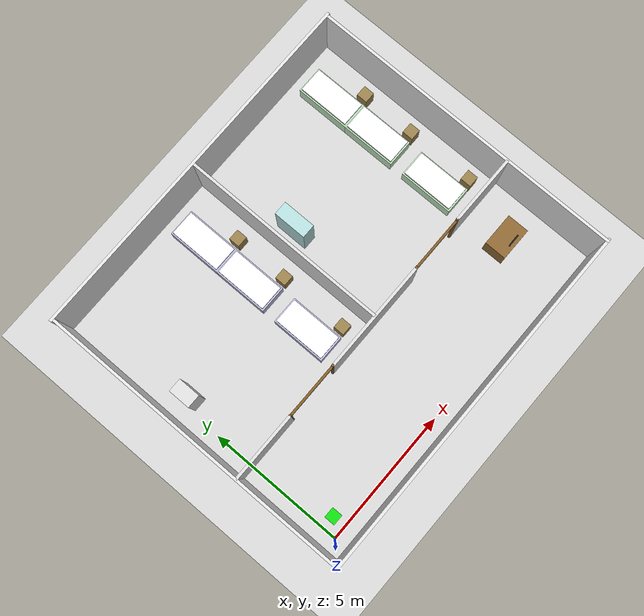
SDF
<?xml version="1.0"?>
<sdf version="1.6">
  <world name="hospital_room">

    <!-- ── Lighting ─────────────────────────────────────────────────── -->
    <light name="sun" type="directional">
      <cast_shadows>true</cast_shadows>
      <pose>0 0 10 0 0 0</pose>
      <diffuse>0.95 0.95 0.95 1</diffuse>
      <specular>0.3 0.3 0.3 1</specular>
      <direction>-0.5 0.1 -0.9</direction>
    </light>

    <light name="ambient_ward_a" type="point">
      <pose>2.5 7.0 2.4 0 0 0</pose>
      <diffuse>0.7 0.7 0.8 1</diffuse>
      <specular>0.1 0.1 0.1 1</specular>
      <attenuation><range>8</range><linear>0.1</linear></attenuation>
    </light>

    <light name="ambient_ward_b" type="point">
      <pose>9.5 7.0 2.4 0 0 0</pose>
      <diffuse>0.7 0.7 0.8 1</diffuse>
      <specular>0.1 0.1 0.1 1</specular>
      <attenuation><range>8</range><linear>0.1</linear></attenuation>
    </light>

    <scene>
      <ambient>0.5 0.5 0.55 1</ambient>
      <background>0.6 0.6 0.65 1</background>
      <shadows>true</shadows>
    </scene>

    <physics name="default_physics" type="ode">
      <max_step_size>0.001</max_step_size>
      <real_time_factor>1</real_time_factor>
    </physics>

    <!-- ── Ground plane ─────────────────────────────────────────────── -->
    <model name="ground_plane">
      <static>true</static>
      <link name="link">
        <collision name="collision">
          <geometry><plane><normal>0 0 1</normal><size>30 30</size></plane></geometry>
          <surface><friction><ode><mu>1.0</mu><mu2>1.0</mu2></ode></friction></surface>
        </collision>
        <visual name="visual">
          <geometry><plane><normal>0 0 1</normal><size>30 30</size></plane></geometry>
          <material><ambient>0.82 0.82 0.82 1</ambient><diffuse>0.82 0.82 0.82 1</diffuse></material>
        </visual>
      </link>
    </model>

    <model name="wall_south">
      <static>true</static><pose>6.0 -0.5 1.25 0 0 0</pose>
      <link name="link">
        <collision name="c"><geometry><box><size>13.2 0.1 2.5</size></box></geometry></collision>
        <visual name="v"><geometry><box><size>13.2 0.1 2.5</size></box></geometry>
          <material><ambient>0.88 0.88 0.88 1</ambient><diffuse>0.88 0.88 0.88 1</diffuse></material></visual>
      </link>
    </model>

    <model name="wall_north">
      <static>true</static><pose>6.0 11.0 1.25 0 0 0</pose>
      <link name="link">
        <collision name="c"><geometry><box><size>13.2 0.1 2.5</size></box></geometry></collision>
        <visual name="v"><geometry><box><size>13.2 0.1 2.5</size></box></geometry>
          <material><ambient>0.88 0.88 0.88 1</ambient><diffuse>0.88 0.88 0.88 1</diffuse></material></visual>
      </link>
    </model>

    <model name="wall_west">
      <static>true</static><pose>-0.5 5.25 1.25 0 0 0</pose>
      <link name="link">
        <collision name="c"><geometry><box><size>0.1 11.6 2.5</size></box></geometry></collision>
        <visual name="v"><geometry><box><size>0.1 11.6 2.5</size></box></geometry>
          <material><ambient>0.88 0.88 0.88 1</ambient><diffuse>0.88 0.88 0.88 1</diffuse></material></visual>
      </link>
    </model>

    <model name="wall_east">
      <static>true</static><pose>12.5 5.25 1.25 0 0 0</pose>
      <link name="link">
        <collision name="c"><geometry><box><size>0.1 11.6 2.5</size></box></geometry></collision>
        <visual name="v"><geometry><box><size>0.1 11.6 2.5</size></box></geometry>
          <material><ambient>0.88 0.88 0.88 1</ambient><diffuse>0.88 0.88 0.88 1</diffuse></material></visual>
      </link>
    </model>

    <!-- west segment: x -0.5 → 2.0 -->
    <model name="divider_west">
      <static>true</static><pose>0.75 3.5 1.25 0 0 0</pose>
      <link name="link">
        <collision name="c"><geometry><box><size>2.5 0.1 2.5</size></box></geometry></collision>
        <visual name="v"><geometry><box><size>2.5 0.1 2.5</size></box></geometry>
          <material><ambient>0.85 0.85 0.85 1</ambient><diffuse>0.85 0.85 0.85 1</diffuse></material></visual>
      </link>
    </model>

    <!-- middle segment: x 4.0 → 8.0 -->
    <model name="divider_mid">
      <static>true</static><pose>6.0 3.5 1.25 0 0 0</pose>
      <link name="link">
        <collision name="c"><geometry><box><size>4.0 0.1 2.5</size></box></geometry></collision>
        <visual name="v"><geometry><box><size>4.0 0.1 2.5</size></box></geometry>
          <material><ambient>0.85 0.85 0.85 1</ambient><diffuse>0.85 0.85 0.85 1</diffuse></material></visual>
      </link>
    </model>

    <!-- east segment: x 10.0 → 12.5 -->
    <model name="divider_east">
      <static>true</static><pose>11.25 3.5 1.25 0 0 0</pose>
      <link name="link">
        <collision name="c"><geometry><box><size>2.5 0.1 2.5</size></box></geometry></collision>
        <visual name="v"><geometry><box><size>2.5 0.1 2.5</size></box></geometry>
          <material><ambient>0.85 0.85 0.85 1</ambient><diffuse>0.85 0.85 0.85 1</diffuse></material></visual>
      </link>
    </model>

    <model name="wall_centre">
      <static>true</static><pose>6.0 7.25 1.25 0 0 0</pose>
      <link name="link">
        <collision name="c"><geometry><box><size>0.1 7.5 2.5</size></box></geometry></collision>
        <visual name="v"><geometry><box><size>0.1 7.5 2.5</size></box></geometry>
          <material><ambient>0.85 0.85 0.85 1</ambient><diffuse>0.85 0.85 0.85 1</diffuse></material></visual>
      </link>
    </model>

    <!-- ════════════════════════════════════════════════════════════════
         DOOR FRAMES (visual markers at openings)
    ════════════════════════════════════════════════════════════════════ -->

    <!-- Door A left post x=2.0 -->
    <model name="door_a_left"><static>true</static><pose>2.0 3.5 1.25 0 0 0</pose>
      <link name="link">
        <collision name="c"><geometry><box><size>0.08 0.08 2.5</size></box></geometry></collision>
        <visual name="v"><geometry><box><size>0.08 0.08 2.5</size></box></geometry>
          <material><ambient>0.5 0.35 0.15 1</ambient><diffuse>0.5 0.35 0.15 1</diffuse></material></visual>
      </link>
    </model>
    <!-- Door A right post x=4.0 -->
    <model name="door_a_right"><static>true</static><pose>4.0 3.5 1.25 0 0 0</pose>
      <link name="link">
        <collision name="c"><geometry><box><size>0.08 0.08 2.5</size></box></geometry></collision>
        <visual name="v"><geometry><box><size>0.08 0.08 2.5</size></box></geometry>
          <material><ambient>0.5 0.35 0.15 1</ambient><diffuse>0.5 0.35 0.15 1</diffuse></material></visual>
      </link>
    </model>
    <!-- Door A lintel -->
    <model name="door_a_top"><static>true</static><pose>3.0 3.5 2.3 0 0 0</pose>
      <link name="link">
        <collision name="c"><geometry><box><size>2.08 0.08 0.2</size></box></geometry></collision>
        <visual name="v"><geometry><box><size>2.08 0.08 0.2</size></box></geometry>
          <material><ambient>0.5 0.35 0.15 1</ambient><diffuse>0.5 0.35 0.15 1</diffuse></material></visual>
      </link>
    </model>

    <!-- Door B left post x=8.0 -->
    <model name="door_b_left"><static>true</static><pose>8.0 3.5 1.25 0 0 0</pose>
      <link name="link">
        <collision name="c"><geometry><box><size>0.08 0.08 2.5</size></box></geometry></collision>
        <visual name="v"><geometry><box><size>0.08 0.08 2.5</size></box></geometry>
          <material><ambient>0.5 0.35 0.15 1</ambient><diffuse>0.5 0.35 0.15 1</diffuse></material></visual>
      </link>
    </model>
    <!-- Door B right post x=10.0 -->
    <model name="door_b_right"><static>true</static><pose>10.0 3.5 1.25 0 0 0</pose>
      <link name="link">
        <collision name="c"><geometry><box><size>0.08 0.08 2.5</size></box></geometry></collision>
        <visual name="v"><geometry><box><size>0.08 0.08 2.5</size></box></geometry>
          <material><ambient>0.5 0.35 0.15 1</ambient><diffuse>0.5 0.35 0.15 1</diffuse></material></visual>
      </link>
    </model>
    <!-- Door B lintel -->
    <model name="door_b_top"><static>true</static><pose>9.0 3.5 2.3 0 0 0</pose>
      <link name="link">
        <collision name="c"><geometry><box><size>2.08 0.08 0.2</size></box></geometry></collision>
        <visual name="v"><geometry><box><size>2.08 0.08 0.2</size></box></geometry>
          <material><ambient>0.5 0.35 0.15 1</ambient><diffuse>0.5 0.35 0.15 1</diffuse></material></visual>
      </link>
    </model>

    <model name="bed_1_frame"><static>true</static><pose>4.5 5.0 0.3 0 0 0</pose>
      <link name="link">
        <collision name="c"><geometry><box><size>1.0 2.0 0.6</size></box></geometry></collision>
        <visual name="v"><geometry><box><size>1.0 2.0 0.6</size></box></geometry>
          <material><ambient>0.75 0.75 0.9 1</ambient><diffuse>0.75 0.75 0.9 1</diffuse></material></visual>
      </link>
    </model>
    <!-- Mattress on bed 1 -->
    <model name="bed_1_mattress"><static>true</static><pose>4.5 5.0 0.65 0 0 0</pose>
      <link name="link">
        <visual name="v"><geometry><box><size>0.9 1.9 0.1</size></box></geometry>
          <material><ambient>0.95 0.95 0.95 1</ambient><diffuse>0.95 0.95 0.95 1</diffuse></material></visual>
      </link>
    </model>
    <!-- Side table bed 1 -->
    <model name="table_1"><static>true</static><pose>5.3 4.2 0.35 0 0 0</pose>
      <link name="link">
        <collision name="c"><geometry><box><size>0.4 0.4 0.7</size></box></geometry></collision>
        <visual name="v"><geometry><box><size>0.4 0.4 0.7</size></box></geometry>
          <material><ambient>0.6 0.5 0.3 1</ambient><diffuse>0.6 0.5 0.3 1</diffuse></material></visual>
      </link>
    </model>

    <model name="bed_2_frame"><static>true</static><pose>4.5 7.5 0.3 0 0 0</pose>
      <link name="link">
        <collision name="c"><geometry><box><size>1.0 2.0 0.6</size></box></geometry></collision>
        <visual name="v"><geometry><box><size>1.0 2.0 0.6</size></box></geometry>
          <material><ambient>0.75 0.75 0.9 1</ambient><diffuse>0.75 0.75 0.9 1</diffuse></material></visual>
      </link>
    </model>
    <model name="bed_2_mattress"><static>true</static><pose>4.5 7.5 0.65 0 0 0</pose>
      <link name="link">
        <visual name="v"><geometry><box><size>0.9 1.9 0.1</size></box></geometry>
          <material><ambient>0.95 0.95 0.95 1</ambient><diffuse>0.95 0.95 0.95 1</diffuse></material></visual>
      </link>
    </model>
    <model name="table_2"><static>true</static><pose>5.3 6.7 0.35 0 0 0</pose>
      <link name="link">
        <collision name="c"><geometry><box><size>0.4 0.4 0.7</size></box></geometry></collision>
        <visual name="v"><geometry><box><size>0.4 0.4 0.7</size></box></geometry>
          <material><ambient>0.6 0.5 0.3 1</ambient><diffuse>0.6 0.5 0.3 1</diffuse></material></visual>
      </link>
    </model>

    <model name="bed_3_frame"><static>true</static><pose>4.5 9.5 0.3 0 0 0</pose>
      <link name="link">
        <collision name="c"><geometry><box><size>1.0 2.0 0.6</size></box></geometry></collision>
        <visual name="v"><geometry><box><size>1.0 2.0 0.6</size></box></geometry>
          <material><ambient>0.75 0.75 0.9 1</ambient><diffuse>0.75 0.75 0.9 1</diffuse></material></visual>
      </link>
    </model>
    <model name="bed_3_mattress"><static>true</static><pose>4.5 9.5 0.65 0 0 0</pose>
      <link name="link">
        <visual name="v"><geometry><box><size>0.9 1.9 0.1</size></box></geometry>
          <material><ambient>0.95 0.95 0.95 1</ambient><diffuse>0.95 0.95 0.95 1</diffuse></material></visual>
      </link>
    </model>
    <model name="table_3"><static>true</static><pose>5.3 8.7 0.35 0 0 0</pose>
      <link name="link">
        <collision name="c"><geometry><box><size>0.4 0.4 0.7</size></box></geometry></collision>
        <visual name="v"><geometry><box><size>0.4 0.4 0.7</size></box></geometry>
          <material><ambient>0.6 0.5 0.3 1</ambient><diffuse>0.6 0.5 0.3 1</diffuse></material></visual>
      </link>
    </model>

    <!-- ════════════════════════════════════════════════════════════════
         WARD B BEDS  (x≈11.0, robot aisle at x≈8.5)
    ════════════════════════════════════════════════════════════════════ -->

    <model name="bed_4_frame"><static>true</static><pose>11.0 5.0 0.3 0 0 0</pose>
      <link name="link">
        <collision name="c"><geometry><box><size>1.0 2.0 0.6</size></box></geometry></collision>
        <visual name="v"><geometry><box><size>1.0 2.0 0.6</size></box></geometry>
          <material><ambient>0.75 0.9 0.75 1</ambient><diffuse>0.75 0.9 0.75 1</diffuse></material></visual>
      </link>
    </model>
    <model name="bed_4_mattress"><static>true</static><pose>11.0 5.0 0.65 0 0 0</pose>
      <link name="link">
        <visual name="v"><geometry><box><size>0.9 1.9 0.1</size></box></geometry>
          <material><ambient>0.95 0.95 0.95 1</ambient><diffuse>0.95 0.95 0.95 1</diffuse></material></visual>
      </link>
    </model>
    <model name="table_4"><static>true</static><pose>11.8 4.2 0.35 0 0 0</pose>
      <link name="link">
        <collision name="c"><geometry><box><size>0.4 0.4 0.7</size></box></geometry></collision>
        <visual name="v"><geometry><box><size>0.4 0.4 0.7</size></box></geometry>
          <material><ambient>0.6 0.5 0.3 1</ambient><diffuse>0.6 0.5 0.3 1</diffuse></material></visual>
      </link>
    </model>

    <model name="bed_5_frame"><static>true</static><pose>11.0 7.5 0.3 0 0 0</pose>
      <link name="link">
        <collision name="c"><geometry><box><size>1.0 2.0 0.6</size></box></geometry></collision>
        <visual name="v"><geometry><box><size>1.0 2.0 0.6</size></box></geometry>
          <material><ambient>0.75 0.9 0.75 1</ambient><diffuse>0.75 0.9 0.75 1</diffuse></material></visual>
      </link>
    </model>
    <model name="bed_5_mattress"><static>true</static><pose>11.0 7.5 0.65 0 0 0</pose>
      <link name="link">
        <visual name="v"><geometry><box><size>0.9 1.9 0.1</size></box></geometry>
          <material><ambient>0.95 0.95 0.95 1</ambient><diffuse>0.95 0.95 0.95 1</diffuse></material></visual>
      </link>
    </model>
    <model name="table_5"><static>true</static><pose>11.8 6.7 0.35 0 0 0</pose>
      <link name="link">
        <collision name="c"><geometry><box><size>0.4 0.4 0.7</size></box></geometry></collision>
        <visual name="v"><geometry><box><size>0.4 0.4 0.7</size></box></geometry>
          <material><ambient>0.6 0.5 0.3 1</ambient><diffuse>0.6 0.5 0.3 1</diffuse></material></visual>
      </link>
    </model>

    <model name="bed_6_frame"><static>true</static><pose>11.0 9.5 0.3 0 0 0</pose>
      <link name="link">
        <collision name="c"><geometry><box><size>1.0 2.0 0.6</size></box></geometry></collision>
        <visual name="v"><geometry><box><size>1.0 2.0 0.6</size></box></geometry>
          <material><ambient>0.75 0.9 0.75 1</ambient><diffuse>0.75 0.9 0.75 1</diffuse></material></visual>
      </link>
    </model>
    <model name="bed_6_mattress"><static>true</static><pose>11.0 9.5 0.65 0 0 0</pose>
      <link name="link">
        <visual name="v"><geometry><box><size>0.9 1.9 0.1</size></box></geometry>
          <material><ambient>0.95 0.95 0.95 1</ambient><diffuse>0.95 0.95 0.95 1</diffuse></material></visual>
      </link>
    </model>
    <model name="table_6"><static>true</static><pose>11.8 8.7 0.35 0 0 0</pose>
      <link name="link">
        <collision name="c"><geometry><box><size>0.4 0.4 0.7</size></box></geometry></collision>
        <visual name="v"><geometry><box><size>0.4 0.4 0.7</size></box></geometry>
          <material><ambient>0.6 0.5 0.3 1</ambient><diffuse>0.6 0.5 0.3 1</diffuse></material></visual>
      </link>
    </model>

    <!-- ════════════════════════════════════════════════════════════════
         HALLWAY FURNITURE
    ════════════════════════════════════════════════════════════════════ -->

    <!-- Nurses station desk — near east end of hallway -->
    <model name="nurses_desk"><static>true</static><pose>11.0 2.0 0.45 0 0 0</pose>
      <link name="link">
        <collision name="c"><geometry><box><size>1.2 0.8 0.9</size></box></geometry></collision>
        <visual name="v"><geometry><box><size>1.2 0.8 0.9</size></box></geometry>
          <material><ambient>0.55 0.40 0.20 1</ambient><diffuse>0.55 0.40 0.20 1</diffuse></material></visual>
      </link>
    </model>

    <!-- Computer monitor on desk -->
    <model name="nurses_monitor"><static>true</static><pose>11.0 1.75 1.05 0 0 0</pose>
      <link name="link">
        <visual name="v"><geometry><box><size>0.4 0.05 0.3</size></box></geometry>
          <material><ambient>0.1 0.1 0.1 1</ambient><diffuse>0.1 0.1 0.1 1</diffuse></material></visual>
      </link>
    </model>

    <!-- Charging dock — bright green floor marker near home -->
    <model name="charging_dock"><static>true</static><pose>0.5 0.5 0.01 0 0 0</pose>
      <link name="link">
        <collision name="c"><geometry><box><size>0.4 0.4 0.02</size></box></geometry></collision>
        <visual name="v"><geometry><box><size>0.4 0.4 0.02</size></box></geometry>
          <material><ambient>0.05 0.85 0.05 1</ambient><diffuse>0.05 0.85 0.05 1</diffuse></material></visual>
      </link>
    </model>

    <!-- Supply cabinet near west wall of Ward A -->
    <model name="supply_cabinet"><static>true</static><pose>0.4 6.5 0.9 0 0 0</pose>
      <link name="link">
        <collision name="c"><geometry><box><size>0.5 0.8 1.8</size></box></geometry></collision>
        <visual name="v"><geometry><box><size>0.5 0.8 1.8</size></box></geometry>
          <material><ambient>0.85 0.85 0.85 1</ambient><diffuse>0.85 0.85 0.85 1</diffuse></material></visual>
      </link>
    </model>

    <!-- Pharmacy cabinet Ward B west wall -->
    <model name="pharmacy_cabinet"><static>true</static><pose>6.8 7.5 0.9 0 0 0</pose>
      <link name="link">
        <collision name="c"><geometry><box><size>0.5 1.2 1.8</size></box></geometry></collision>
        <visual name="v"><geometry><box><size>0.5 1.2 1.8</size></box></geometry>
          <material><ambient>0.7 0.85 0.85 1</ambient><diffuse>0.7 0.85 0.85 1</diffuse></material></visual>
      </link>
    </model>

  </world>
</sdf>
